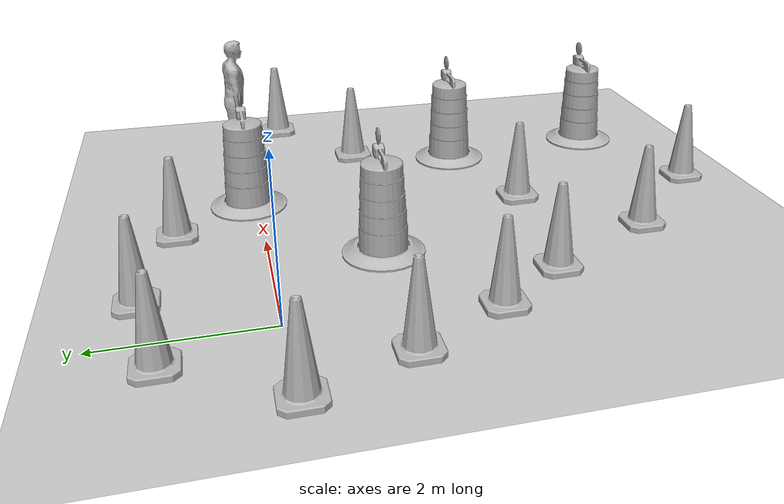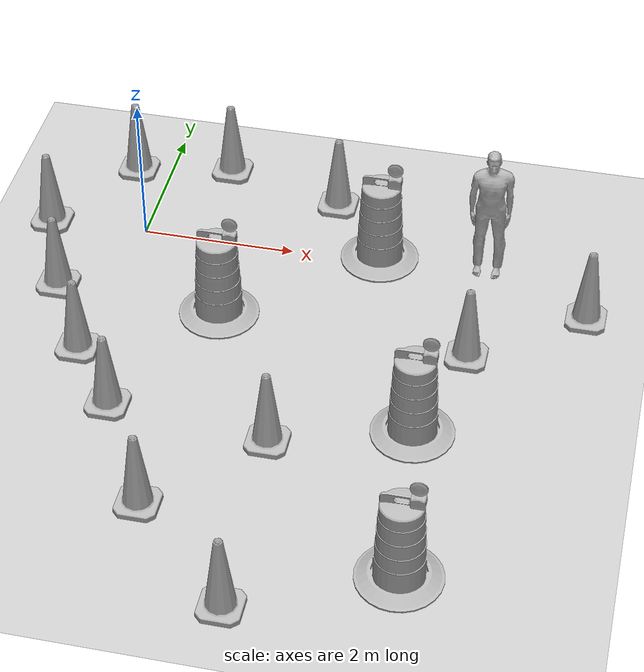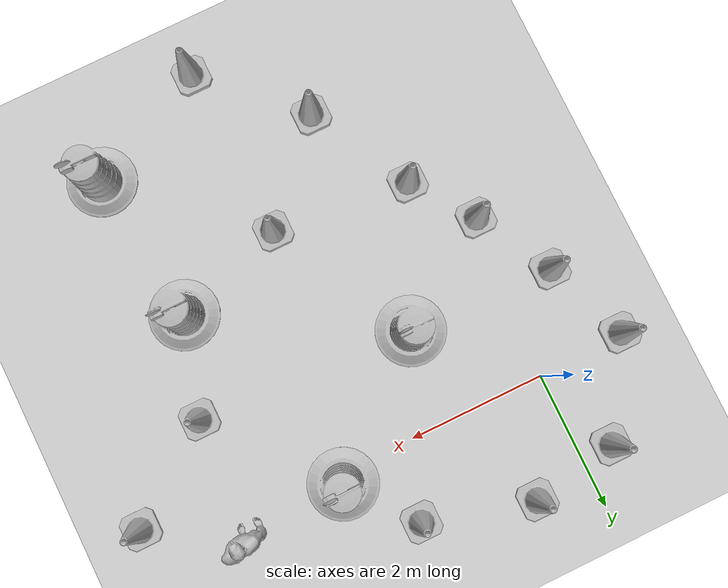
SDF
<sdf version="1.7">
 <world name="default">
  <light name="sun" type="directional">
   <pose>0 0 10 0 -0 0</pose>
   <diffuse>0.8 0.8 0.8 1</diffuse>
   <specular>0.2 0.2 0.2 1</specular>
   <attenuation>
    <range>1000</range>
    <constant>0.9</constant>
    <linear>0.01</linear>
    <quadratic>0.001</quadratic>
   </attenuation>
   <direction>-0.5 0.1 -0.9</direction>
   <spot><inner_angle>0</inner_angle><outer_angle>0</outer_angle><falloff>0</falloff></spot>
  </light>
  <model name="ground_plane">
   <static>1</static>
   <link name="link">
    <collision name="collision">
     <geometry><plane><normal>0 0 1</normal><size>100 100</size></plane></geometry>
     <surface>
      <contact><collide_bitmask>65535</collide_bitmask></contact>
      <friction><ode><mu>100</mu><mu2>50</mu2></ode></friction>
     </surface>
    </collision>
    <visual name="visual">
     <cast_shadows>0</cast_shadows>
     <geometry><plane><normal>0 0 1</normal><size>100 100</size></plane></geometry>
     <material>
      <script><uri>file://media/materials/scripts/gazebo.material</uri><name>Gazebo/Grey</name></script>
     </material>
    </visual>
   </link>
  </model>
  <gravity>0 0 -9.8</gravity>
  <magnetic_field>6e-06 2.3e-05 -4.2e-05</magnetic_field>
  <atmosphere type="adiabatic"/>
  <physics type="ode">
   <max_step_size>0.001</max_step_size>
   <real_time_factor>1</real_time_factor>
   <real_time_update_rate>1000</real_time_update_rate>
  </physics>
  <scene><ambient>0.4 0.4 0.4 1</ambient><background>0.7 0.7 0.7 1</background><shadows>1</shadows></scene>
  <audio><device>default</device></audio>
  <spherical_coordinates>
   <surface_model>EARTH_WGS84</surface_model>
   <latitude_deg>0</latitude_deg>
   <longitude_deg>0</longitude_deg>
   <elevation>0</elevation>
   <heading_deg>0</heading_deg>
  </spherical_coordinates>
  <model name="person_standing">
   <link name="link">
    <inertial>
     <pose>0 -0.1 0.95 0 -0 0</pose>
     <mass>80</mass>
     <inertia><ixx>24.88</ixx><ixy>0</ixy><ixz>0</ixz><iyy>25.73</iyy><iyz>0</iyz><izz>2.48</izz></inertia>
    </inertial>
    <collision name="bottom">
     <pose>0 -0.1 0.01 0 -0 0</pose>
     <geometry><box><size>0.5 0.35 0.02</size></box></geometry>
    </collision>
    <collision name="person">
     <pose>0 0 0.02 0.04 -0 0</pose>
     <geometry><mesh><uri>model://person_standing/meshes/standing.dae</uri></mesh></geometry>
    </collision>
    <visual name="visual">
     <pose>0 0 0.02 0.04 -0 0</pose>
     <geometry><mesh><uri>model://person_standing/meshes/standing.dae</uri></mesh></geometry>
    </visual>
   </link>
   <pose>4.54071 0.244468 -0 1e-06 1e-06 -0.000198</pose>
  </model>
  <model name="Construction Cone">
   <link name="link">
    <collision name="collision">
     <geometry>
      <mesh><scale>10 10 10</scale><uri>model://construction_cone/meshes/construction_cone.dae</uri></mesh>
     </geometry>
    </collision>
    <visual name="visual">
     <geometry>
      <mesh><scale>10 10 10</scale><uri>model://construction_cone/meshes/construction_cone.dae</uri></mesh>
     </geometry>
    </visual>
    <inertial>
     <inertia><ixx>1</ixx><ixy>0</ixy><ixz>0</ixz><iyy>1</iyy><iyz>0</iyz><izz>1</izz></inertia>
     <mass>1</mass>
    </inertial>
   </link>
   <pose>4.54537 -1.53875 -1e-05 -0 -0 -0</pose>
  </model>
  <model name="Construction Barrel">
   <link name="link">
    <inertial>
     <pose>0 0 0.4 0 -0 0</pose>
     <mass>500</mass>
     <inertia><ixx>51.2096</ixx><iyy>51.2096</iyy><izz>25</izz><ixy>0</ixy><ixz>0</ixz><iyz>0</iyz></inertia>
    </inertial>
    <collision name="collision">
     <geometry><mesh><uri>model://construction_barrel/meshes/construction_barrel.dae</uri></mesh></geometry>
    </collision>
    <visual name="visual">
     <geometry><mesh><uri>model://construction_barrel/meshes/construction_barrel.dae</uri></mesh></geometry>
    </visual>
   </link>
   <pose>4.12159 -2.95704 -1e-06 1e-06 -9e-06 -4.4e-05</pose>
  </model>
  <model name="Construction Cone_0">
   <link name="link">
    <collision name="collision">
     <geometry>
      <mesh><scale>10 10 10</scale><uri>model://construction_cone/meshes/construction_cone.dae</uri></mesh>
     </geometry>
    </collision>
    <visual name="visual">
     <geometry>
      <mesh><scale>10 10 10</scale><uri>model://construction_cone/meshes/construction_cone.dae</uri></mesh>
     </geometry>
    </visual>
    <inertial>
     <inertia><ixx>1</ixx><ixy>0</ixy><ixz>0</ixz><iyy>1</iyy><iyz>0</iyz><izz>1</izz></inertia>
     <mass>1</mass>
    </inertial>
   </link>
   <pose>-1.27754 -0.056211 -0 0 -0 0</pose>
  </model>
  <model name="Construction Cone_1">
   <link name="link">
    <collision name="collision">
     <geometry>
      <mesh><scale>10 10 10</scale><uri>model://construction_cone/meshes/construction_cone.dae</uri></mesh>
     </geometry>
    </collision>
    <visual name="visual">
     <geometry>
      <mesh><scale>10 10 10</scale><uri>model://construction_cone/meshes/construction_cone.dae</uri></mesh>
     </geometry>
    </visual>
    <inertial>
     <inertia><ixx>1</ixx><ixy>0</ixy><ixz>0</ixz><iyy>1</iyy><iyz>0</iyz><izz>1</izz></inertia>
     <mass>1</mass>
    </inertial>
   </link>
   <pose>-0.800706 -1.28563 -0 0 -1e-06 0</pose>
  </model>
  <model name="Construction Cone_2">
   <link name="link">
    <collision name="collision">
     <geometry>
      <mesh><scale>10 10 10</scale><uri>model://construction_cone/meshes/construction_cone.dae</uri></mesh>
     </geometry>
    </collision>
    <visual name="visual">
     <geometry>
      <mesh><scale>10 10 10</scale><uri>model://construction_cone/meshes/construction_cone.dae</uri></mesh>
     </geometry>
    </visual>
    <inertial>
     <inertia><ixx>1</ixx><ixy>0</ixy><ixz>0</ixz><iyy>1</iyy><iyz>0</iyz><izz>1</izz></inertia>
     <mass>1</mass>
    </inertial>
   </link>
   <pose>0.456907 -3.27797 -6e-06 -4e-06 1e-06 0</pose>
  </model>
  <model name="Construction Cone_3">
   <link name="link">
    <collision name="collision">
     <geometry>
      <mesh><scale>10 10 10</scale><uri>model://construction_cone/meshes/construction_cone.dae</uri></mesh>
     </geometry>
    </collision>
    <visual name="visual">
     <geometry>
      <mesh><scale>10 10 10</scale><uri>model://construction_cone/meshes/construction_cone.dae</uri></mesh>
     </geometry>
    </visual>
    <inertial>
     <inertia><ixx>1</ixx><ixy>0</ixy><ixz>0</ixz><iyy>1</iyy><iyz>0</iyz><izz>1</izz></inertia>
     <mass>1</mass>
    </inertial>
   </link>
   <pose>1.26482 -4.76582 -0 0 -0 0</pose>
  </model>
  <model name="Construction Cone_4">
   <link name="link">
    <collision name="collision">
     <geometry>
      <mesh><scale>10 10 10</scale><uri>model://construction_cone/meshes/construction_cone.dae</uri></mesh>
     </geometry>
    </collision>
    <visual name="visual">
     <geometry>
      <mesh><scale>10 10 10</scale><uri>model://construction_cone/meshes/construction_cone.dae</uri></mesh>
     </geometry>
    </visual>
    <inertial>
     <inertia><ixx>1</ixx><ixy>0</ixy><ixz>0</ixz><iyy>1</iyy><iyz>0</iyz><izz>1</izz></inertia>
     <mass>1</mass>
    </inertial>
   </link>
   <pose>2.56441 -6.03796 -0 0 -0 0</pose>
  </model>
  <model name="Construction Barrel_0">
   <link name="link">
    <inertial>
     <pose>0 0 0.4 0 -0 0</pose>
     <mass>500</mass>
     <inertia><ixx>51.2096</ixx><iyy>51.2096</iyy><izz>25</izz><ixy>0</ixy><ixz>0</ixz><iyz>0</iyz></inertia>
    </inertial>
    <collision name="collision">
     <geometry><mesh><uri>model://construction_barrel/meshes/construction_barrel.dae</uri></mesh></geometry>
    </collision>
    <visual name="visual">
     <geometry><mesh><uri>model://construction_barrel/meshes/construction_barrel.dae</uri></mesh></geometry>
    </visual>
   </link>
   <pose>1.35257 -1.36322 -1e-06 4e-06 -2e-06 -2.7e-05</pose>
  </model>
  <model name="Construction Barrel_1">
   <link name="link">
    <inertial>
     <pose>0 0 0.4 0 -0 0</pose>
     <mass>500</mass>
     <inertia><ixx>51.2096</ixx><iyy>51.2096</iyy><izz>25</izz><ixy>0</ixy><ixz>0</ixz><iyz>0</iyz></inertia>
    </inertial>
    <collision name="collision">
     <geometry><mesh><uri>model://construction_barrel/meshes/construction_barrel.dae</uri></mesh></geometry>
    </collision>
    <visual name="visual">
     <geometry><mesh><uri>model://construction_barrel/meshes/construction_barrel.dae</uri></mesh></geometry>
    </visual>
   </link>
   <pose>4.37219 -5.19443 0 0 0 -3.3e-05</pose>
  </model>
  <model name="Construction Cone_5">
   <link name="link">
    <collision name="collision">
     <geometry>
      <mesh><scale>10 10 10</scale><uri>model://construction_cone/meshes/construction_cone.dae</uri></mesh>
     </geometry>
    </collision>
    <visual name="visual">
     <geometry>
      <mesh><scale>10 10 10</scale><uri>model://construction_cone/meshes/construction_cone.dae</uri></mesh>
     </geometry>
    </visual>
    <inertial>
     <inertia><ixx>1</ixx><ixy>0</ixy><ixz>0</ixz><iyy>1</iyy><iyz>0</iyz><izz>1</izz></inertia>
     <mass>1</mass>
    </inertial>
   </link>
   <pose>5.9088 -0.530426 -0 0 -0 0</pose>
  </model>
  <model name="Construction Cone_6">
   <link name="link">
    <collision name="collision">
     <geometry>
      <mesh><scale>10 10 10</scale><uri>model://construction_cone/meshes/construction_cone.dae</uri></mesh>
     </geometry>
    </collision>
    <visual name="visual">
     <geometry>
      <mesh><scale>10 10 10</scale><uri>model://construction_cone/meshes/construction_cone.dae</uri></mesh>
     </geometry>
    </visual>
    <inertial>
     <inertia><ixx>1</ixx><ixy>0</ixy><ixz>0</ixz><iyy>1</iyy><iyz>0</iyz><izz>1</izz></inertia>
     <mass>1</mass>
    </inertial>
   </link>
   <pose>2.47971 -3.48413 -0 0 -0 0</pose>
  </model>
  <model name="Construction Cone_7">
   <link name="link">
    <collision name="collision">
     <geometry>
      <mesh><scale>10 10 10</scale><uri>model://construction_cone/meshes/construction_cone.dae</uri></mesh>
     </geometry>
    </collision>
    <visual name="visual">
     <geometry>
      <mesh><scale>10 10 10</scale><uri>model://construction_cone/meshes/construction_cone.dae</uri></mesh>
     </geometry>
    </visual>
    <inertial>
     <inertia><ixx>1</ixx><ixy>0</ixy><ixz>0</ixz><iyy>1</iyy><iyz>0</iyz><izz>1</izz></inertia>
     <mass>1</mass>
    </inertial>
   </link>
   <pose>-0.452728 1.27103 -0 0 -1e-06 0</pose>
  </model>
  <model name="Construction Cone_8">
   <link name="link">
    <collision name="collision">
     <geometry>
      <mesh><scale>10 10 10</scale><uri>model://construction_cone/meshes/construction_cone.dae</uri></mesh>
     </geometry>
    </collision>
    <visual name="visual">
     <geometry>
      <mesh><scale>10 10 10</scale><uri>model://construction_cone/meshes/construction_cone.dae</uri></mesh>
     </geometry>
    </visual>
    <inertial>
     <inertia><ixx>1</ixx><ixy>0</ixy><ixz>0</ixz><iyy>1</iyy><iyz>0</iyz><izz>1</izz></inertia>
     <mass>1</mass>
    </inertial>
   </link>
   <pose>-0.190984 -2.39546 -1e-05 0 -0 0</pose>
  </model>
  <model name="Construction Cone_9">
   <link name="link">
    <collision name="collision">
     <geometry>
      <mesh><scale>10 10 10</scale><uri>model://construction_cone/meshes/construction_cone.dae</uri></mesh>
     </geometry>
    </collision>
    <visual name="visual">
     <geometry>
      <mesh><scale>10 10 10</scale><uri>model://construction_cone/meshes/construction_cone.dae</uri></mesh>
     </geometry>
    </visual>
    <inertial>
     <inertia><ixx>1</ixx><ixy>0</ixy><ixz>0</ixz><iyy>1</iyy><iyz>0</iyz><izz>1</izz></inertia>
     <mass>1</mass>
    </inertial>
   </link>
   <pose>0.816419 1.4964 -0 0 -0 0</pose>
  </model>
  <model name="Construction Cone_10">
   <link name="link">
    <collision name="collision">
     <geometry>
      <mesh><scale>10 10 10</scale><uri>model://construction_cone/meshes/construction_cone.dae</uri></mesh>
     </geometry>
    </collision>
    <visual name="visual">
     <geometry>
      <mesh><scale>10 10 10</scale><uri>model://construction_cone/meshes/construction_cone.dae</uri></mesh>
     </geometry>
    </visual>
    <inertial>
     <inertia><ixx>1</ixx><ixy>0</ixy><ixz>0</ixz><iyy>1</iyy><iyz>0</iyz><izz>1</izz></inertia>
     <mass>1</mass>
    </inertial>
   </link>
   <pose>2.39109 1.06864 -0 0 -1e-06 0</pose>
  </model>
  <model name="Construction Barrel_2">
   <link name="link">
    <inertial>
     <pose>0 0 0.4 0 -0 0</pose>
     <mass>500</mass>
     <inertia><ixx>51.2096</ixx><iyy>51.2096</iyy><izz>25</izz><ixy>0</ixy><ixz>0</ixz><iyz>0</iyz></inertia>
    </inertial>
    <collision name="collision">
     <geometry><mesh><uri>model://construction_barrel/meshes/construction_barrel.dae</uri></mesh></geometry>
    </collision>
    <visual name="visual">
     <geometry><mesh><uri>model://construction_barrel/meshes/construction_barrel.dae</uri></mesh></geometry>
    </visual>
   </link>
   <pose>3.13609 0.131983 -0 0 -0 -3.1e-05</pose>
  </model>
 </world>
</sdf>
